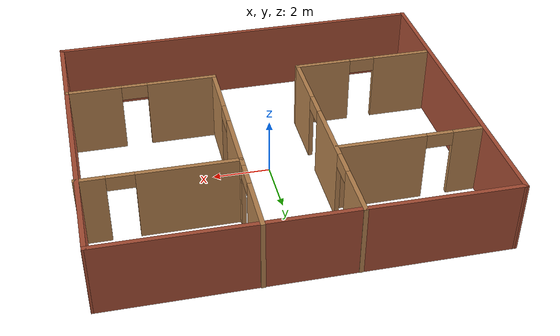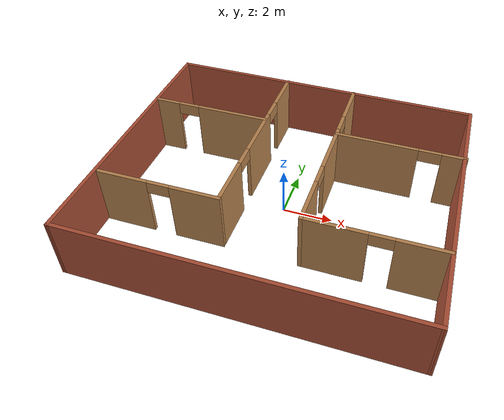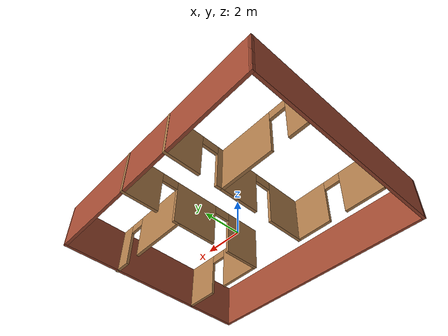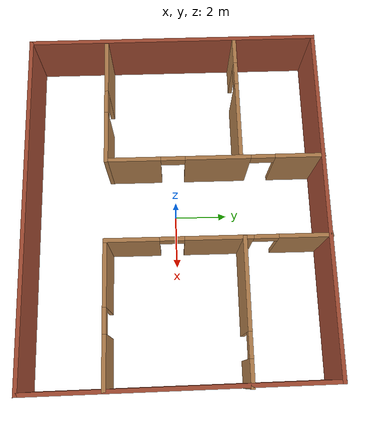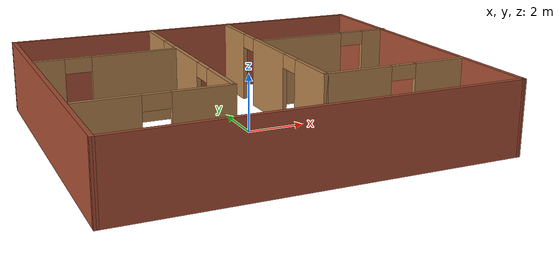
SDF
<?xml version='1.0'?>
<sdf version='1.7'>
  <model name='my_floor'>
    <pose>-0.00748 0.028693 0 0 -0 0</pose>
    <link name='Wall_11'>
      <pose>-1.60921 1.4647 0 0 -0 -1.5708</pose>
      <visual name='Wall_11_Visual_0'>
        <pose>-3.18439 0 1.25 0 -0 0</pose>
        <geometry>
          <box>
            <size>1.88122 0.15 2.5</size>
          </box>
        </geometry>
        <material>
          <script>
            <uri>file://media/materials/scripts/gazebo.material</uri>
            <name>Gazebo/Wood</name>
          </script>
          <ambient>1 1 1 1</ambient>
        </material>
        <meta>
          <layer>0</layer>
        </meta>
      </visual>
      <collision name='Wall_11_Collision_0'>
        <geometry>
          <box>
            <size>1.88122 0.15 2.5</size>
          </box>
        </geometry>
        <pose>-3.18439 0 1.25 0 -0 0</pose>
      </collision>
      <visual name='Wall_11_Visual_1'>
        <pose>-0.114736 0 1.25 0 -0 0</pose>
        <geometry>
          <box>
            <size>2.45809 0.15 2.5</size>
          </box>
        </geometry>
        <material>
          <script>
            <uri>file://media/materials/scripts/gazebo.material</uri>
            <name>Gazebo/Wood</name>
          </script>
          <ambient>1 1 1 1</ambient>
        </material>
        <meta>
          <layer>0</layer>
        </meta>
      </visual>
      <collision name='Wall_11_Collision_1'>
        <geometry>
          <box>
            <size>2.45809 0.15 2.5</size>
          </box>
        </geometry>
        <pose>-0.114736 0 1.25 0 -0 0</pose>
      </collision>
      <visual name='Wall_11_Visual_2'>
        <pose>3.06966 0 1.25 0 -0 0</pose>
        <geometry>
          <box>
            <size>2.11069 0.15 2.5</size>
          </box>
        </geometry>
        <material>
          <script>
            <uri>file://media/materials/scripts/gazebo.material</uri>
            <name>Gazebo/Wood</name>
          </script>
          <ambient>1 1 1 1</ambient>
        </material>
        <meta>
          <layer>0</layer>
        </meta>
      </visual>
      <collision name='Wall_11_Collision_2'>
        <geometry>
          <box>
            <size>2.11069 0.15 2.5</size>
          </box>
        </geometry>
        <pose>3.06966 0 1.25 0 -0 0</pose>
      </collision>
      <visual name='Wall_11_Visual_3'>
        <pose>-1.79378 0 2.25 0 -0 0</pose>
        <geometry>
          <box>
            <size>0.9 0.15 0.5</size>
          </box>
        </geometry>
        <material>
          <script>
            <uri>file://media/materials/scripts/gazebo.material</uri>
            <name>Gazebo/Wood</name>
          </script>
          <ambient>1 1 1 1</ambient>
        </material>
        <meta>
          <layer>0</layer>
        </meta>
      </visual>
      <collision name='Wall_11_Collision_3'>
        <geometry>
          <box>
            <size>0.9 0.15 0.5</size>
          </box>
        </geometry>
        <pose>-1.79378 0 2.25 0 -0 0</pose>
      </collision>
      <visual name='Wall_11_Visual_4'>
        <pose>1.56431 0 2.25 0 -0 0</pose>
        <geometry>
          <box>
            <size>0.9 0.15 0.5</size>
          </box>
        </geometry>
        <material>
          <script>
            <uri>file://media/materials/scripts/gazebo.material</uri>
            <name>Gazebo/Wood</name>
          </script>
          <ambient>1 1 1 1</ambient>
        </material>
        <meta>
          <layer>0</layer>
        </meta>
      </visual>
      <collision name='Wall_11_Collision_4'>
        <geometry>
          <box>
            <size>0.9 0.15 0.5</size>
          </box>
        </geometry>
        <pose>1.56431 0 2.25 0 -0 0</pose>
      </collision>
    </link>
    <link name='Wall_12'>
      <pose>-4.03421 -2.5853 0 0 -0 3.14159</pose>
      <visual name='Wall_12_Visual_0'>
        <pose>-1.48943 0 1.25 0 -0 0</pose>
        <geometry>
          <box>
            <size>2.02114 0.15 2.5</size>
          </box>
        </geometry>
        <material>
          <script>
            <uri>file://media/materials/scripts/gazebo.material</uri>
            <name>Gazebo/Wood</name>
          </script>
          <ambient>1 1 1 1</ambient>
        </material>
        <meta>
          <layer>0</layer>
        </meta>
      </visual>
      <collision name='Wall_12_Collision_0'>
        <geometry>
          <box>
            <size>2.02114 0.15 2.5</size>
          </box>
        </geometry>
        <pose>-1.48943 0 1.25 0 -0 0</pose>
      </collision>
      <visual name='Wall_12_Visual_1'>
        <pose>1.46057 0 1.25 0 -0 0</pose>
        <geometry>
          <box>
            <size>2.07886 0.15 2.5</size>
          </box>
        </geometry>
        <material>
          <script>
            <uri>file://media/materials/scripts/gazebo.material</uri>
            <name>Gazebo/Wood</name>
          </script>
          <ambient>1 1 1 1</ambient>
        </material>
        <meta>
          <layer>0</layer>
        </meta>
      </visual>
      <collision name='Wall_12_Collision_1'>
        <geometry>
          <box>
            <size>2.07886 0.15 2.5</size>
          </box>
        </geometry>
        <pose>1.46057 0 1.25 0 -0 0</pose>
      </collision>
      <visual name='Wall_12_Visual_2'>
        <pose>-0.028861 0 2.25 0 -0 0</pose>
        <geometry>
          <box>
            <size>0.9 0.15 0.5</size>
          </box>
        </geometry>
        <material>
          <script>
            <uri>file://media/materials/scripts/gazebo.material</uri>
            <name>Gazebo/Wood</name>
          </script>
          <ambient>1 1 1 1</ambient>
        </material>
        <meta>
          <layer>0</layer>
        </meta>
      </visual>
      <collision name='Wall_12_Collision_2'>
        <geometry>
          <box>
            <size>0.9 0.15 0.5</size>
          </box>
        </geometry>
        <pose>-0.028861 0 2.25 0 -0 0</pose>
      </collision>
    </link>
    <link name='Wall_14'>
      <pose>-4.08668 2.43645 0 0 -0 3.14159</pose>
      <visual name='Wall_14_Visual_0'>
        <pose>-0.973474 0 1.25 0 -0 0</pose>
        <geometry>
          <box>
            <size>3.05305 0.15 2.5</size>
          </box>
        </geometry>
        <material>
          <script>
            <uri>file://media/materials/scripts/gazebo.material</uri>
            <name>Gazebo/Wood</name>
          </script>
          <ambient>1 1 1 1</ambient>
        </material>
        <meta>
          <layer>0</layer>
        </meta>
      </visual>
      <collision name='Wall_14_Collision_0'>
        <geometry>
          <box>
            <size>3.05305 0.15 2.5</size>
          </box>
        </geometry>
        <pose>-0.973474 0 1.25 0 -0 0</pose>
      </collision>
      <visual name='Wall_14_Visual_1'>
        <pose>1.97653 0 1.25 0 -0 0</pose>
        <geometry>
          <box>
            <size>1.04695 0.15 2.5</size>
          </box>
        </geometry>
        <material>
          <script>
            <uri>file://media/materials/scripts/gazebo.material</uri>
            <name>Gazebo/Wood</name>
          </script>
          <ambient>1 1 1 1</ambient>
        </material>
        <meta>
          <layer>0</layer>
        </meta>
      </visual>
      <collision name='Wall_14_Collision_1'>
        <geometry>
          <box>
            <size>1.04695 0.15 2.5</size>
          </box>
        </geometry>
        <pose>1.97653 0 1.25 0 -0 0</pose>
      </collision>
      <visual name='Wall_14_Visual_2'>
        <pose>1.00305 0 2.25 0 -0 0</pose>
        <geometry>
          <box>
            <size>0.9 0.15 0.5</size>
          </box>
        </geometry>
        <material>
          <script>
            <uri>file://media/materials/scripts/gazebo.material</uri>
            <name>Gazebo/Wood</name>
          </script>
          <ambient>1 1 1 1</ambient>
        </material>
        <meta>
          <layer>0</layer>
        </meta>
      </visual>
      <collision name='Wall_14_Collision_2'>
        <geometry>
          <box>
            <size>0.9 0.15 0.5</size>
          </box>
        </geometry>
        <pose>1.00305 0 2.25 0 -0 0</pose>
      </collision>
    </link>
    <link name='Wall_16'>
      <pose>1.45155 1.44721 0 0 -0 -1.5708</pose>
      <visual name='Wall_16_Visual_0'>
        <pose>-3.14941 0 1.25 0 -0 0</pose>
        <geometry>
          <box>
            <size>1.95118 0.15 2.5</size>
          </box>
        </geometry>
        <material>
          <script>
            <uri>file://media/materials/scripts/gazebo.material</uri>
            <name>Gazebo/Wood</name>
          </script>
          <ambient>1 1 1 1</ambient>
        </material>
        <meta>
          <layer>0</layer>
        </meta>
      </visual>
      <collision name='Wall_16_Collision_0'>
        <geometry>
          <box>
            <size>1.95118 0.15 2.5</size>
          </box>
        </geometry>
        <pose>-3.14941 0 1.25 0 -0 0</pose>
      </collision>
      <visual name='Wall_16_Visual_1'>
        <pose>-0.036031 0 1.25 0 -0 0</pose>
        <geometry>
          <box>
            <size>2.47558 0.15 2.5</size>
          </box>
        </geometry>
        <material>
          <script>
            <uri>file://media/materials/scripts/gazebo.material</uri>
            <name>Gazebo/Wood</name>
          </script>
          <ambient>1 1 1 1</ambient>
        </material>
        <meta>
          <layer>0</layer>
        </meta>
      </visual>
      <collision name='Wall_16_Collision_1'>
        <geometry>
          <box>
            <size>2.47558 0.15 2.5</size>
          </box>
        </geometry>
        <pose>-0.036031 0 1.25 0 -0 0</pose>
      </collision>
      <visual name='Wall_16_Visual_2'>
        <pose>3.11338 0 1.25 0 -0 0</pose>
        <geometry>
          <box>
            <size>2.02324 0.15 2.5</size>
          </box>
        </geometry>
        <material>
          <script>
            <uri>file://media/materials/scripts/gazebo.material</uri>
            <name>Gazebo/Wood</name>
          </script>
          <ambient>1 1 1 1</ambient>
        </material>
        <meta>
          <layer>0</layer>
        </meta>
      </visual>
      <collision name='Wall_16_Collision_2'>
        <geometry>
          <box>
            <size>2.02324 0.15 2.5</size>
          </box>
        </geometry>
        <pose>3.11338 0 1.25 0 -0 0</pose>
      </collision>
      <visual name='Wall_16_Visual_3'>
        <pose>-1.72382 0 2.25 0 -0 0</pose>
        <geometry>
          <box>
            <size>0.9 0.15 0.5</size>
          </box>
        </geometry>
        <material>
          <script>
            <uri>file://media/materials/scripts/gazebo.material</uri>
            <name>Gazebo/Wood</name>
          </script>
          <ambient>1 1 1 1</ambient>
        </material>
        <meta>
          <layer>0</layer>
        </meta>
      </visual>
      <collision name='Wall_16_Collision_3'>
        <geometry>
          <box>
            <size>0.9 0.15 0.5</size>
          </box>
        </geometry>
        <pose>-1.72382 0 2.25 0 -0 0</pose>
      </collision>
      <visual name='Wall_16_Visual_4'>
        <pose>1.65176 0 2.25 0 -0 0</pose>
        <geometry>
          <box>
            <size>0.9 0.15 0.5</size>
          </box>
        </geometry>
        <material>
          <script>
            <uri>file://media/materials/scripts/gazebo.material</uri>
            <name>Gazebo/Wood</name>
          </script>
          <ambient>1 1 1 1</ambient>
        </material>
        <meta>
          <layer>0</layer>
        </meta>
      </visual>
      <collision name='Wall_16_Collision_4'>
        <geometry>
          <box>
            <size>0.9 0.15 0.5</size>
          </box>
        </geometry>
        <pose>1.65176 0 2.25 0 -0 0</pose>
      </collision>
    </link>
    <link name='Wall_17'>
      <pose>4.00155 -2.60279 0 0 -0 0</pose>
      <visual name='Wall_17_Visual_0'>
        <pose>-1.40455 0 1.25 0 -0 0</pose>
        <geometry>
          <box>
            <size>2.4409 0.15 2.5</size>
          </box>
        </geometry>
        <material>
          <script>
            <uri>file://media/materials/scripts/gazebo.material</uri>
            <name>Gazebo/Wood</name>
          </script>
          <ambient>1 1 1 1</ambient>
        </material>
        <meta>
          <layer>0</layer>
        </meta>
      </visual>
      <collision name='Wall_17_Collision_0'>
        <geometry>
          <box>
            <size>2.4409 0.15 2.5</size>
          </box>
        </geometry>
        <pose>-1.40455 0 1.25 0 -0 0</pose>
      </collision>
      <visual name='Wall_17_Visual_1'>
        <pose>1.67045 0 1.25 0 -0 0</pose>
        <geometry>
          <box>
            <size>1.9091 0.15 2.5</size>
          </box>
        </geometry>
        <material>
          <script>
            <uri>file://media/materials/scripts/gazebo.material</uri>
            <name>Gazebo/Wood</name>
          </script>
          <ambient>1 1 1 1</ambient>
        </material>
        <meta>
          <layer>0</layer>
        </meta>
      </visual>
      <collision name='Wall_17_Collision_1'>
        <geometry>
          <box>
            <size>1.9091 0.15 2.5</size>
          </box>
        </geometry>
        <pose>1.67045 0 1.25 0 -0 0</pose>
      </collision>
      <visual name='Wall_17_Visual_2'>
        <pose>0.2659 0 2.25 0 -0 0</pose>
        <geometry>
          <box>
            <size>0.9 0.15 0.5</size>
          </box>
        </geometry>
        <material>
          <script>
            <uri>file://media/materials/scripts/gazebo.material</uri>
            <name>Gazebo/Wood</name>
          </script>
          <ambient>1 1 1 1</ambient>
        </material>
        <meta>
          <layer>0</layer>
        </meta>
      </visual>
      <collision name='Wall_17_Collision_2'>
        <geometry>
          <box>
            <size>0.9 0.15 0.5</size>
          </box>
        </geometry>
        <pose>0.2659 0 2.25 0 -0 0</pose>
      </collision>
    </link>
    <link name='Wall_19'>
      <pose>4.02259 2.38398 0 0 -0 -0.006849</pose>
      <visual name='Wall_19_Visual_0'>
        <pose>-0.944656 0 1.25 0 -0 0</pose>
        <geometry>
          <box>
            <size>3.36791 0.15 2.5</size>
          </box>
        </geometry>
        <material>
          <script>
            <uri>file://media/materials/scripts/gazebo.material</uri>
            <name>Gazebo/Wood</name>
          </script>
          <ambient>1 1 1 1</ambient>
        </material>
        <meta>
          <layer>0</layer>
        </meta>
      </visual>
      <collision name='Wall_19_Collision_0'>
        <geometry>
          <box>
            <size>3.36791 0.15 2.5</size>
          </box>
        </geometry>
        <pose>-0.944656 0 1.25 0 -0 0</pose>
      </collision>
      <visual name='Wall_19_Visual_1'>
        <pose>2.13395 0 1.25 0 -0 0</pose>
        <geometry>
          <box>
            <size>0.989313 0.15 2.5</size>
          </box>
        </geometry>
        <material>
          <script>
            <uri>file://media/materials/scripts/gazebo.material</uri>
            <name>Gazebo/Wood</name>
          </script>
          <ambient>1 1 1 1</ambient>
        </material>
        <meta>
          <layer>0</layer>
        </meta>
      </visual>
      <collision name='Wall_19_Collision_1'>
        <geometry>
          <box>
            <size>0.989313 0.15 2.5</size>
          </box>
        </geometry>
        <pose>2.13395 0 1.25 0 -0 0</pose>
      </collision>
      <visual name='Wall_19_Visual_2'>
        <pose>1.1893 0 2.25 0 -0 0</pose>
        <geometry>
          <box>
            <size>0.9 0.15 0.5</size>
          </box>
        </geometry>
        <material>
          <script>
            <uri>file://media/materials/scripts/gazebo.material</uri>
            <name>Gazebo/Wood</name>
          </script>
          <ambient>1 1 1 1</ambient>
        </material>
        <meta>
          <layer>0</layer>
        </meta>
      </visual>
      <collision name='Wall_19_Collision_2'>
        <geometry>
          <box>
            <size>0.9 0.15 0.5</size>
          </box>
        </geometry>
        <pose>1.1893 0 2.25 0 -0 0</pose>
      </collision>
    </link>
    <link name='Wall_6'>
      <collision name='Wall_6_Collision'>
        <geometry>
          <box>
            <size>11.25 0.15 2.5</size>
          </box>
        </geometry>
        <pose>0 0 1.25 0 -0 0</pose>
      </collision>
      <visual name='Wall_6_Visual'>
        <pose>0 0 1.25 0 -0 0</pose>
        <geometry>
          <box>
            <size>11.25 0.15 2.5</size>
          </box>
        </geometry>
        <material>
          <script>
            <uri>file://media/materials/scripts/gazebo.material</uri>
            <name>Gazebo/Bricks</name>
          </script>
          <ambient>1 1 1 1</ambient>
        </material>
        <meta>
          <layer>0</layer>
        </meta>
      </visual>
      <pose>-6.62886 -0.000316 0 0 -0 -1.5708</pose>
    </link>
    <link name='Wall_7'>
      <collision name='Wall_7_Collision'>
        <geometry>
          <box>
            <size>13.4075 0.15 2.5</size>
          </box>
        </geometry>
        <pose>0 0 1.25 0 -0 0</pose>
      </collision>
      <visual name='Wall_7_Visual'>
        <pose>0 0 1.25 0 -0 0</pose>
        <geometry>
          <box>
            <size>13.4075 0.15 2.5</size>
          </box>
        </geometry>
        <material>
          <script>
            <uri>file://media/materials/scripts/gazebo.material</uri>
            <name>Gazebo/Bricks</name>
          </script>
          <ambient>1 1 1 1</ambient>
        </material>
        <meta>
          <layer>0</layer>
        </meta>
      </visual>
      <pose>-0.000126 -5.54467 0 0 -0 0.000852</pose>
    </link>
    <link name='Wall_8'>
      <collision name='Wall_8_Collision'>
        <geometry>
          <box>
            <size>11.1172 0.15 2.5</size>
          </box>
        </geometry>
        <pose>0 0 1.25 0 -0 0</pose>
      </collision>
      <visual name='Wall_8_Visual'>
        <pose>0 0 1.25 0 -0 0</pose>
        <geometry>
          <box>
            <size>11.1172 0.15 2.5</size>
          </box>
        </geometry>
        <material>
          <script>
            <uri>file://media/materials/scripts/gazebo.material</uri>
            <name>Gazebo/Bricks</name>
          </script>
          <ambient>1 1 1 1</ambient>
        </material>
        <meta>
          <layer>0</layer>
        </meta>
      </visual>
      <pose>6.55865 -0.055881 0 0 -0 1.58356</pose>
    </link>
    <link name='Wall_9'>
      <collision name='Wall_9_Collision'>
        <geometry>
          <box>
            <size>13.2681 0.15 2.5</size>
          </box>
        </geometry>
        <pose>0 0 1.25 0 -0 0</pose>
      </collision>
      <visual name='Wall_9_Visual'>
        <pose>0 0 1.25 0 -0 0</pose>
        <geometry>
          <box>
            <size>13.2681 0.15 2.5</size>
          </box>
        </geometry>
        <material>
          <script>
            <uri>file://media/materials/scripts/gazebo.material</uri>
            <name>Gazebo/Bricks</name>
          </script>
          <ambient>1 1 1 1</ambient>
        </material>
        <meta>
          <layer>0</layer>
        </meta>
      </visual>
      <pose>-0.070086 5.48847 0 0 -0 3.13226</pose>
    </link>
    <static>1</static>
  </model>
</sdf>
